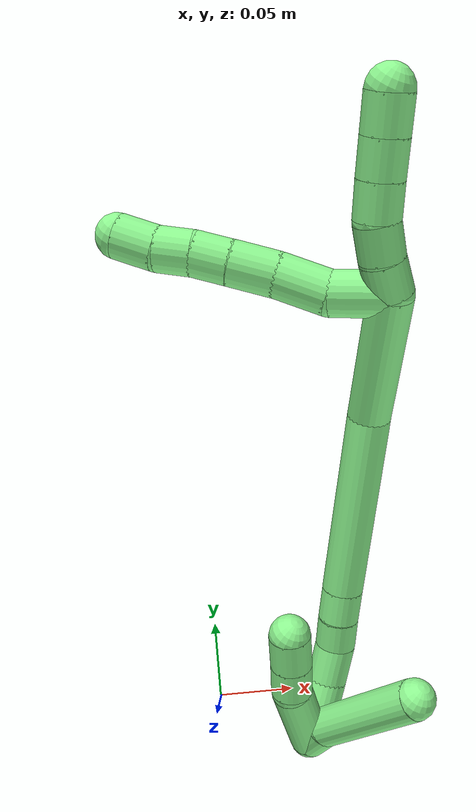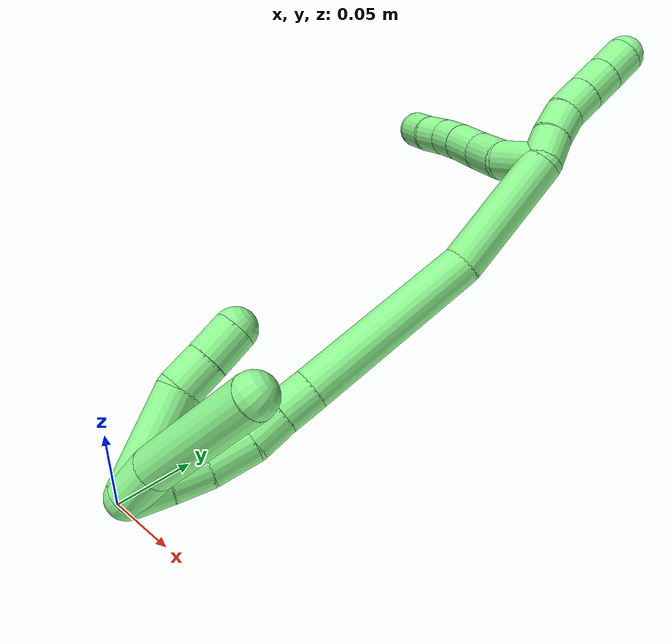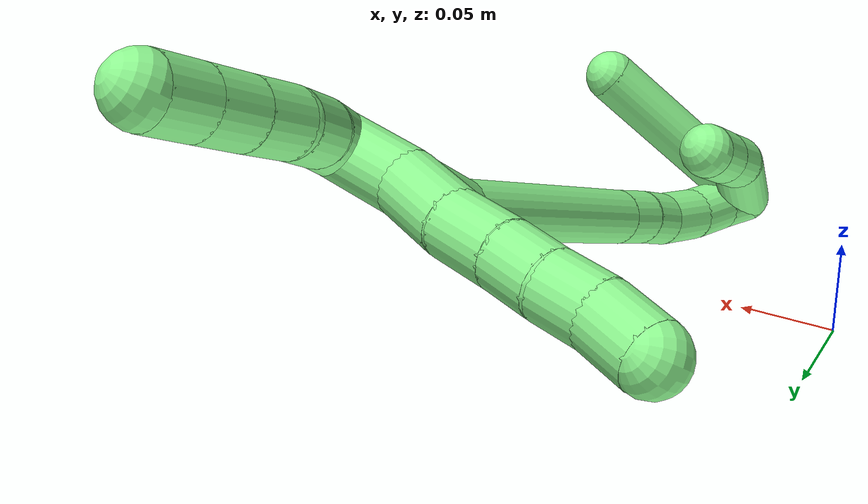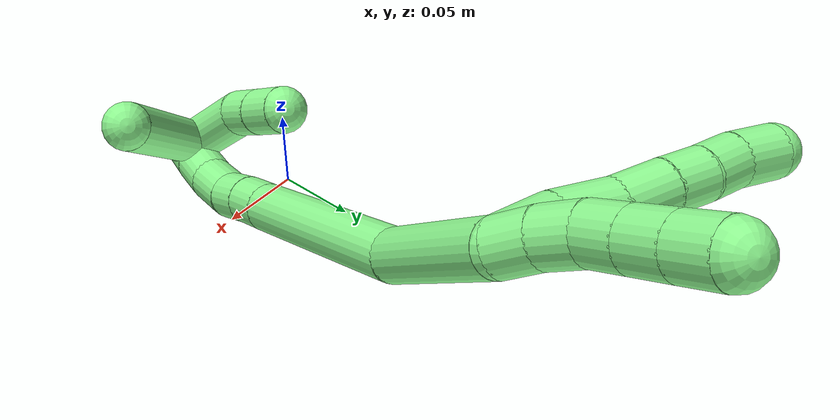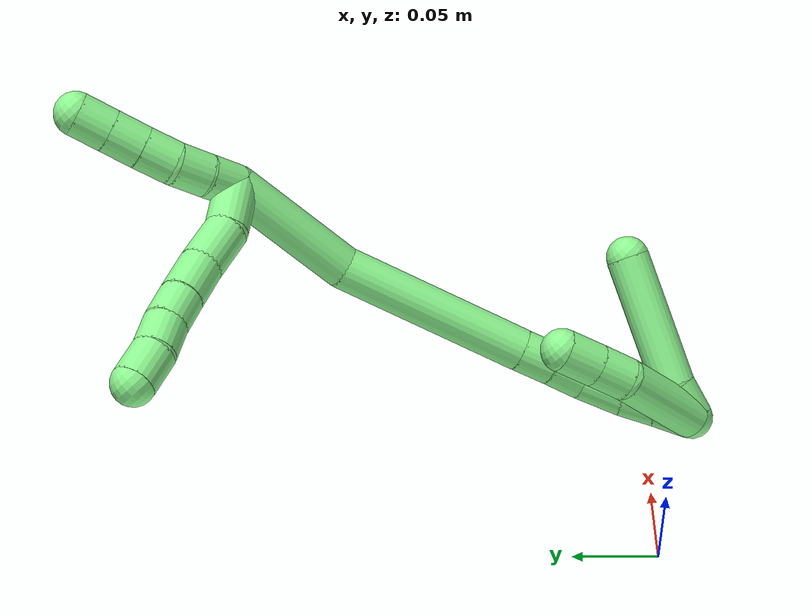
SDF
<sdf version="1.7">
 <world name="default">
  <model name="13">
   <static>0</static>
   <link name="13">
    <collision name="collision-cylinder-e_1_2_8">
     <pose>-0.012824 0.006797 -0.006803 -2.35669 -0.927377 1.7587</pose>
     <geometry><cylinder><radius>0.0125</radius><length>0.032059</length></cylinder></geometry>
     <surface>
      <friction><ode><mu>1.16</mu><mu2>1.16</mu2><slip1>0</slip1><slip2>0</slip2></ode></friction>
      <contact><ode><kp>1e+06</kp><kd>1</kd><max_vel>0</max_vel><min_depth>0.001</min_depth></ode></contact>
     </surface>
    </collision>
    <visual name="visual-cylinder-e_1_2_8">
     <pose>-0.012824 0.006797 -0.006803 -2.35669 -0.927377 1.7587</pose>
     <geometry><cylinder><radius>0.0125</radius><length>0.032059</length></cylinder></geometry>
     <material><ambient>0.564706 0.984314 0.572549 1</ambient></material>
    </visual>
    <collision name="collision-cylinder-e_2_8_9">
     <pose>-0.037551 0.021812 -0.015612 -1.81015 -0.952882 1.16282</pose>
     <geometry><cylinder><radius>0.0125</radius><length>0.029204</length></cylinder></geometry>
     <surface>
      <friction><ode><mu>1.16</mu><mu2>1.16</mu2><slip1>0</slip1><slip2>0</slip2></ode></friction>
      <contact><ode><kp>1e+06</kp><kd>1</kd><max_vel>0</max_vel><min_depth>0.001</min_depth></ode></contact>
     </surface>
    </collision>
    <visual name="visual-cylinder-e_2_8_9">
     <pose>-0.037551 0.021812 -0.015612 -1.81015 -0.952882 1.16282</pose>
     <geometry><cylinder><radius>0.0125</radius><length>0.029204</length></cylinder></geometry>
     <material><ambient>0.564706 0.984314 0.572549 1</ambient></material>
    </visual>
    <collision name="collision-cylinder-e_3_9_10">
     <pose>-0.06066 0.035935 -0.019823 -1.92825 -1.05844 1.40057</pose>
     <geometry><cylinder><radius>0.0125</radius><length>0.025716</length></cylinder></geometry>
     <surface>
      <friction><ode><mu>1.16</mu><mu2>1.16</mu2><slip1>0</slip1><slip2>0</slip2></ode></friction>
      <contact><ode><kp>1e+06</kp><kd>1</kd><max_vel>0</max_vel><min_depth>0.001</min_depth></ode></contact>
     </surface>
    </collision>
    <visual name="visual-cylinder-e_3_9_10">
     <pose>-0.06066 0.035935 -0.019823 -1.92825 -1.05844 1.40057</pose>
     <geometry><cylinder><radius>0.0125</radius><length>0.025716</length></cylinder></geometry>
     <material><ambient>0.564706 0.984314 0.572549 1</ambient></material>
    </visual>
    <collision name="collision-cylinder-e_4_10_11">
     <pose>-0.080459 0.046845 -0.024042 -1.95325 -1.01021 1.37177</pose>
     <geometry><cylinder><radius>0.0125</radius><length>0.020292</length></cylinder></geometry>
     <surface>
      <friction><ode><mu>1.16</mu><mu2>1.16</mu2><slip1>0</slip1><slip2>0</slip2></ode></friction>
      <contact><ode><kp>1e+06</kp><kd>1</kd><max_vel>0</max_vel><min_depth>0.001</min_depth></ode></contact>
     </surface>
    </collision>
    <visual name="visual-cylinder-e_4_10_11">
     <pose>-0.080459 0.046845 -0.024042 -1.95325 -1.01021 1.37177</pose>
     <geometry><cylinder><radius>0.0125</radius><length>0.020292</length></cylinder></geometry>
     <material><ambient>0.564706 0.984314 0.572549 1</ambient></material>
    </visual>
    <collision name="collision-cylinder-e_5_11_12">
     <pose>-0.09752 0.056296 -0.029125 -2.17507 -1.00285 1.6144</pose>
     <geometry><cylinder><radius>0.0125</radius><length>0.02009</length></cylinder></geometry>
     <surface>
      <friction><ode><mu>1.16</mu><mu2>1.16</mu2><slip1>0</slip1><slip2>0</slip2></ode></friction>
      <contact><ode><kp>1e+06</kp><kd>1</kd><max_vel>0</max_vel><min_depth>0.001</min_depth></ode></contact>
     </surface>
    </collision>
    <visual name="visual-cylinder-e_5_11_12">
     <pose>-0.09752 0.056296 -0.029125 -2.17507 -1.00285 1.6144</pose>
     <geometry><cylinder><radius>0.0125</radius><length>0.02009</length></cylinder></geometry>
     <material><ambient>0.564706 0.984314 0.572549 1</ambient></material>
    </visual>
    <collision name="collision-cylinder-e_6_12_6">
     <pose>-0.115138 0.067134 -0.034084 -1.85809 -0.941224 1.19543</pose>
     <geometry><cylinder><radius>0.0125</radius><length>0.022639</length></cylinder></geometry>
     <surface>
      <friction><ode><mu>1.16</mu><mu2>1.16</mu2><slip1>0</slip1><slip2>0</slip2></ode></friction>
      <contact><ode><kp>1e+06</kp><kd>1</kd><max_vel>0</max_vel><min_depth>0.001</min_depth></ode></contact>
     </surface>
    </collision>
    <visual name="visual-cylinder-e_6_12_6">
     <pose>-0.115138 0.067134 -0.034084 -1.85809 -0.941224 1.19543</pose>
     <geometry><cylinder><radius>0.0125</radius><length>0.022639</length></cylinder></geometry>
     <material><ambient>0.564706 0.984314 0.572549 1</ambient></material>
    </visual>
    <collision name="collision-cylinder-e_1_2_13">
     <pose>-0.005654 0.002293 0.007923 -0.281667 -0.600932 0.087799</pose>
     <geometry><cylinder><radius>0.0125</radius><length>0.02</length></cylinder></geometry>
     <surface>
      <friction><ode><mu>1.16</mu><mu2>1.16</mu2><slip1>0</slip1><slip2>0</slip2></ode></friction>
      <contact><ode><kp>1e+06</kp><kd>1</kd><max_vel>0</max_vel><min_depth>0.001</min_depth></ode></contact>
     </surface>
    </collision>
    <visual name="visual-cylinder-e_1_2_13">
     <pose>-0.005654 0.002293 0.007923 -0.281667 -0.600932 0.087799</pose>
     <geometry><cylinder><radius>0.0125</radius><length>0.02</length></cylinder></geometry>
     <material><ambient>0.564706 0.984314 0.572549 1</ambient></material>
    </visual>
    <collision name="collision-cylinder-e_2_13_14">
     <pose>-0.015921 0.007435 0.024248 -0.327044 -0.479487 0.080621</pose>
     <geometry><cylinder><radius>0.0125</radius><length>0.02</length></cylinder></geometry>
     <surface>
      <friction><ode><mu>1.16</mu><mu2>1.16</mu2><slip1>0</slip1><slip2>0</slip2></ode></friction>
      <contact><ode><kp>1e+06</kp><kd>1</kd><max_vel>0</max_vel><min_depth>0.001</min_depth></ode></contact>
     </surface>
    </collision>
    <visual name="visual-cylinder-e_2_13_14">
     <pose>-0.015921 0.007435 0.024248 -0.327044 -0.479487 0.080621</pose>
     <geometry><cylinder><radius>0.0125</radius><length>0.02</length></cylinder></geometry>
     <material><ambient>0.564706 0.984314 0.572549 1</ambient></material>
    </visual>
    <collision name="collision-cylinder-e_3_14_15">
     <pose>-0.022832 0.013232 0.041926 -0.307519 -0.23184 0.036089</pose>
     <geometry><cylinder><radius>0.0125</radius><length>0.02</length></cylinder></geometry>
     <surface>
      <friction><ode><mu>1.16</mu><mu2>1.16</mu2><slip1>0</slip1><slip2>0</slip2></ode></friction>
      <contact><ode><kp>1e+06</kp><kd>1</kd><max_vel>0</max_vel><min_depth>0.001</min_depth></ode></contact>
     </surface>
    </collision>
    <visual name="visual-cylinder-e_3_14_15">
     <pose>-0.022832 0.013232 0.041926 -0.307519 -0.23184 0.036089</pose>
     <geometry><cylinder><radius>0.0125</radius><length>0.02</length></cylinder></geometry>
     <material><ambient>0.564706 0.984314 0.572549 1</ambient></material>
    </visual>
    <collision name="collision-cylinder-e_4_15_16">
     <pose>-0.027301 0.018972 0.060555 -0.29034 -0.21882 0.032117</pose>
     <geometry><cylinder><radius>0.0125</radius><length>0.02</length></cylinder></geometry>
     <surface>
      <friction><ode><mu>1.16</mu><mu2>1.16</mu2><slip1>0</slip1><slip2>0</slip2></ode></friction>
      <contact><ode><kp>1e+06</kp><kd>1</kd><max_vel>0</max_vel><min_depth>0.001</min_depth></ode></contact>
     </surface>
    </collision>
    <visual name="visual-cylinder-e_4_15_16">
     <pose>-0.027301 0.018972 0.060555 -0.29034 -0.21882 0.032117</pose>
     <geometry><cylinder><radius>0.0125</radius><length>0.02</length></cylinder></geometry>
     <material><ambient>0.564706 0.984314 0.572549 1</ambient></material>
    </visual>
    <collision name="collision-cylinder-e_5_16_5">
     <pose>-0.031669 0.024537 0.079262 -0.287995 -0.221528 0.032251</pose>
     <geometry><cylinder><radius>0.0125</radius><length>0.02</length></cylinder></geometry>
     <surface>
      <friction><ode><mu>1.16</mu><mu2>1.16</mu2><slip1>0</slip1><slip2>0</slip2></ode></friction>
      <contact><ode><kp>1e+06</kp><kd>1</kd><max_vel>0</max_vel><min_depth>0.001</min_depth></ode></contact>
     </surface>
    </collision>
    <visual name="visual-cylinder-e_5_16_5">
     <pose>-0.031669 0.024537 0.079262 -0.287995 -0.221528 0.032251</pose>
     <geometry><cylinder><radius>0.0125</radius><length>0.02</length></cylinder></geometry>
     <material><ambient>0.564706 0.984314 0.572549 1</ambient></material>
    </visual>
    <collision name="collision-cylinder-e_1_2_17">
     <pose>0.01002 -0.003424 -0.037813 3.05129 0.258016 2.47133</pose>
     <geometry><cylinder><radius>0.0125</radius><length>0.078536</length></cylinder></geometry>
     <surface>
      <friction><ode><mu>1.16</mu><mu2>1.16</mu2><slip1>0</slip1><slip2>0</slip2></ode></friction>
      <contact><ode><kp>1e+06</kp><kd>1</kd><max_vel>0</max_vel><min_depth>0.001</min_depth></ode></contact>
     </surface>
    </collision>
    <visual name="visual-cylinder-e_1_2_17">
     <pose>0.01002 -0.003424 -0.037813 3.05129 0.258016 2.47133</pose>
     <geometry><cylinder><radius>0.0125</radius><length>0.078536</length></cylinder></geometry>
     <material><ambient>0.564706 0.984314 0.572549 1</ambient></material>
    </visual>
    <collision name="collision-cylinder-e_2_17_18">
     <pose>0.02815 -0.026391 -0.128553 2.78786 0.142784 0.761197</pose>
     <geometry><cylinder><radius>0.0125</radius><length>0.113998</length></cylinder></geometry>
     <surface>
      <friction><ode><mu>1.16</mu><mu2>1.16</mu2><slip1>0</slip1><slip2>0</slip2></ode></friction>
      <contact><ode><kp>1e+06</kp><kd>1</kd><max_vel>0</max_vel><min_depth>0.001</min_depth></ode></contact>
     </surface>
    </collision>
    <visual name="visual-cylinder-e_2_17_18">
     <pose>0.02815 -0.026391 -0.128553 2.78786 0.142784 0.761197</pose>
     <geometry><cylinder><radius>0.0125</radius><length>0.113998</length></cylinder></geometry>
     <material><ambient>0.564706 0.984314 0.572549 1</ambient></material>
    </visual>
    <collision name="collision-cylinder-e_3_18_19">
     <pose>0.037705 -0.049702 -0.191084 2.76787 0.139052 0.705808</pose>
     <geometry><cylinder><radius>0.0125</radius><length>0.020837</length></cylinder></geometry>
     <surface>
      <friction><ode><mu>1.16</mu><mu2>1.16</mu2><slip1>0</slip1><slip2>0</slip2></ode></friction>
      <contact><ode><kp>1e+06</kp><kd>1</kd><max_vel>0</max_vel><min_depth>0.001</min_depth></ode></contact>
     </surface>
    </collision>
    <visual name="visual-cylinder-e_3_18_19">
     <pose>0.037705 -0.049702 -0.191084 2.76787 0.139052 0.705808</pose>
     <geometry><cylinder><radius>0.0125</radius><length>0.020837</length></cylinder></geometry>
     <material><ambient>0.564706 0.984314 0.572549 1</ambient></material>
    </visual>
    <collision name="collision-cylinder-e_4_19_20">
     <pose>0.041091 -0.05675 -0.210147 2.80766 0.191577 1.0363</pose>
     <geometry><cylinder><radius>0.0125</radius><length>0.020395</length></cylinder></geometry>
     <surface>
      <friction><ode><mu>1.16</mu><mu2>1.16</mu2><slip1>0</slip1><slip2>0</slip2></ode></friction>
      <contact><ode><kp>1e+06</kp><kd>1</kd><max_vel>0</max_vel><min_depth>0.001</min_depth></ode></contact>
     </surface>
    </collision>
    <visual name="visual-cylinder-e_4_19_20">
     <pose>0.041091 -0.05675 -0.210147 2.80766 0.191577 1.0363</pose>
     <geometry><cylinder><radius>0.0125</radius><length>0.020395</length></cylinder></geometry>
     <material><ambient>0.564706 0.984314 0.572549 1</ambient></material>
    </visual>
    <collision name="collision-cylinder-e_5_20_21">
     <pose>0.04296 -0.065663 -0.231094 2.68581 -0.005638 -0.02431</pose>
     <geometry><cylinder><radius>0.0125</radius><length>0.02559</length></cylinder></geometry>
     <surface>
      <friction><ode><mu>1.16</mu><mu2>1.16</mu2><slip1>0</slip1><slip2>0</slip2></ode></friction>
      <contact><ode><kp>1e+06</kp><kd>1</kd><max_vel>0</max_vel><min_depth>0.001</min_depth></ode></contact>
     </surface>
    </collision>
    <visual name="visual-cylinder-e_5_20_21">
     <pose>0.04296 -0.065663 -0.231094 2.68581 -0.005638 -0.02431</pose>
     <geometry><cylinder><radius>0.0125</radius><length>0.02559</length></cylinder></geometry>
     <material><ambient>0.564706 0.984314 0.572549 1</ambient></material>
    </visual>
    <collision name="collision-cylinder-e_6_21_22">
     <pose>0.041758 -0.076906 -0.251119 2.56011 -0.110229 -0.364663</pose>
     <geometry><cylinder><radius>0.0125</radius><length>0.020556</length></cylinder></geometry>
     <surface>
      <friction><ode><mu>1.16</mu><mu2>1.16</mu2><slip1>0</slip1><slip2>0</slip2></ode></friction>
      <contact><ode><kp>1e+06</kp><kd>1</kd><max_vel>0</max_vel><min_depth>0.001</min_depth></ode></contact>
     </surface>
    </collision>
    <visual name="visual-cylinder-e_6_21_22">
     <pose>0.041758 -0.076906 -0.251119 2.56011 -0.110229 -0.364663</pose>
     <geometry><cylinder><radius>0.0125</radius><length>0.020556</length></cylinder></geometry>
     <material><ambient>0.564706 0.984314 0.572549 1</ambient></material>
    </visual>
    <collision name="collision-cylinder-e_7_22_1">
     <pose>0.039117 -0.087788 -0.268071 2.582 -0.150918 -0.514574</pose>
     <geometry><cylinder><radius>0.0125</radius><length>0.020089</length></cylinder></geometry>
     <surface>
      <friction><ode><mu>1.16</mu><mu2>1.16</mu2><slip1>0</slip1><slip2>0</slip2></ode></friction>
      <contact><ode><kp>1e+06</kp><kd>1</kd><max_vel>0</max_vel><min_depth>0.001</min_depth></ode></contact>
     </surface>
    </collision>
    <visual name="visual-cylinder-e_7_22_1">
     <pose>0.039117 -0.087788 -0.268071 2.582 -0.150918 -0.514574</pose>
     <geometry><cylinder><radius>0.0125</radius><length>0.020089</length></cylinder></geometry>
     <material><ambient>0.564706 0.984314 0.572549 1</ambient></material>
    </visual>
    <collision name="collision-cylinder-e_1_1_23">
     <pose>0.022307 -0.090458 -0.252496 -0.10803 -0.565048 0.031388</pose>
     <geometry><cylinder><radius>0.0125</radius><length>0.057146</length></cylinder></geometry>
     <surface>
      <friction><ode><mu>1.16</mu><mu2>1.16</mu2><slip1>0</slip1><slip2>0</slip2></ode></friction>
      <contact><ode><kp>1e+06</kp><kd>1</kd><max_vel>0</max_vel><min_depth>0.001</min_depth></ode></contact>
     </surface>
    </collision>
    <visual name="visual-cylinder-e_1_1_23">
     <pose>0.022307 -0.090458 -0.252496 -0.10803 -0.565048 0.031388</pose>
     <geometry><cylinder><radius>0.0125</radius><length>0.057146</length></cylinder></geometry>
     <material><ambient>0.564706 0.984314 0.572549 1</ambient></material>
    </visual>
    <collision name="collision-cylinder-e_2_23_24">
     <pose>0.003992 -0.084845 -0.219076 -0.309153 -0.295739 0.046412</pose>
     <geometry><cylinder><radius>0.0125</radius><length>0.020695</length></cylinder></geometry>
     <surface>
      <friction><ode><mu>1.16</mu><mu2>1.16</mu2><slip1>0</slip1><slip2>0</slip2></ode></friction>
      <contact><ode><kp>1e+06</kp><kd>1</kd><max_vel>0</max_vel><min_depth>0.001</min_depth></ode></contact>
     </surface>
    </collision>
    <visual name="visual-cylinder-e_2_23_24">
     <pose>0.003992 -0.084845 -0.219076 -0.309153 -0.295739 0.046412</pose>
     <geometry><cylinder><radius>0.0125</radius><length>0.020695</length></cylinder></geometry>
     <material><ambient>0.564706 0.984314 0.572549 1</ambient></material>
    </visual>
    <collision name="collision-cylinder-e_3_24_4">
     <pose>-0.002552 -0.078604 -0.199653 -0.312501 -0.324066 0.051492</pose>
     <geometry><cylinder><radius>0.0125</radius><length>0.022159</length></cylinder></geometry>
     <surface>
      <friction><ode><mu>1.16</mu><mu2>1.16</mu2><slip1>0</slip1><slip2>0</slip2></ode></friction>
      <contact><ode><kp>1e+06</kp><kd>1</kd><max_vel>0</max_vel><min_depth>0.001</min_depth></ode></contact>
     </surface>
    </collision>
    <visual name="visual-cylinder-e_3_24_4">
     <pose>-0.002552 -0.078604 -0.199653 -0.312501 -0.324066 0.051492</pose>
     <geometry><cylinder><radius>0.0125</radius><length>0.022159</length></cylinder></geometry>
     <material><ambient>0.564706 0.984314 0.572549 1</ambient></material>
    </visual>
    <collision name="collision-cylinder-e_1_1_25">
     <pose>0.03778 -0.095625 -0.265821 0.236014 0.01578 0.001871</pose>
     <geometry><cylinder><radius>0.0125</radius><length>0.021943</length></cylinder></geometry>
     <surface>
      <friction><ode><mu>1.16</mu><mu2>1.16</mu2><slip1>0</slip1><slip2>0</slip2></ode></friction>
      <contact><ode><kp>1e+06</kp><kd>1</kd><max_vel>0</max_vel><min_depth>0.001</min_depth></ode></contact>
     </surface>
    </collision>
    <visual name="visual-cylinder-e_1_1_25">
     <pose>0.03778 -0.095625 -0.265821 0.236014 0.01578 0.001871</pose>
     <geometry><cylinder><radius>0.0125</radius><length>0.021943</length></cylinder></geometry>
     <material><ambient>0.564706 0.984314 0.572549 1</ambient></material>
    </visual>
    <collision name="collision-cylinder-e_2_25_3">
     <pose>0.047401 -0.111556 -0.219725 0.360737 0.244505 0.044802</pose>
     <geometry><cylinder><radius>0.0125</radius><length>0.078057</length></cylinder></geometry>
     <surface>
      <friction><ode><mu>1.16</mu><mu2>1.16</mu2><slip1>0</slip1><slip2>0</slip2></ode></friction>
      <contact><ode><kp>1e+06</kp><kd>1</kd><max_vel>0</max_vel><min_depth>0.001</min_depth></ode></contact>
     </surface>
    </collision>
    <visual name="visual-cylinder-e_2_25_3">
     <pose>0.047401 -0.111556 -0.219725 0.360737 0.244505 0.044802</pose>
     <geometry><cylinder><radius>0.0125</radius><length>0.078057</length></cylinder></geometry>
     <material><ambient>0.564706 0.984314 0.572549 1</ambient></material>
    </visual>
    <collision name="collision-sphere-3">
     <pose>0.056849 -0.124922 -0.184294 0 -0 0</pose>
     <geometry><sphere><radius>0.0125</radius></sphere></geometry>
     <surface>
      <friction><ode><mu>1.16</mu><mu2>1.16</mu2><slip1>0</slip1><slip2>0</slip2></ode></friction>
      <contact><ode><kp>1e+06</kp><kd>1</kd><max_vel>0</max_vel><min_depth>0.001</min_depth></ode></contact>
     </surface>
    </collision>
    <visual name="visual-sphere-3">
     <pose>0.056849 -0.124922 -0.184294 0 -0 0</pose>
     <geometry><sphere><radius>0.0125</radius></sphere></geometry>
     <material><ambient>0.564706 0.984314 0.572549 1</ambient></material>
    </visual>
    <collision name="collision-sphere-25">
     <pose>0.037953 -0.09819 -0.255155 0 -0 0</pose>
     <geometry><sphere><radius>0.0125</radius></sphere></geometry>
     <surface>
      <friction><ode><mu>1.16</mu><mu2>1.16</mu2><slip1>0</slip1><slip2>0</slip2></ode></friction>
      <contact><ode><kp>1e+06</kp><kd>1</kd><max_vel>0</max_vel><min_depth>0.001</min_depth></ode></contact>
     </surface>
    </collision>
    <visual name="visual-sphere-25">
     <pose>0.037953 -0.09819 -0.255155 0 -0 0</pose>
     <geometry><sphere><radius>0.0125</radius></sphere></geometry>
     <material><ambient>0.564706 0.984314 0.572549 1</ambient></material>
    </visual>
    <collision name="collision-sphere-4">
     <pose>-0.00608 -0.075375 -0.189659 0 -0 0</pose>
     <geometry><sphere><radius>0.0125</radius></sphere></geometry>
     <surface>
      <friction><ode><mu>1.16</mu><mu2>1.16</mu2><slip1>0</slip1><slip2>0</slip2></ode></friction>
      <contact><ode><kp>1e+06</kp><kd>1</kd><max_vel>0</max_vel><min_depth>0.001</min_depth></ode></contact>
     </surface>
    </collision>
    <visual name="visual-sphere-4">
     <pose>-0.00608 -0.075375 -0.189659 0 -0 0</pose>
     <geometry><sphere><radius>0.0125</radius></sphere></geometry>
     <material><ambient>0.564706 0.984314 0.572549 1</ambient></material>
    </visual>
    <collision name="collision-sphere-24">
     <pose>0.000976 -0.081833 -0.209647 0 -0 0</pose>
     <geometry><sphere><radius>0.0125</radius></sphere></geometry>
     <surface>
      <friction><ode><mu>1.16</mu><mu2>1.16</mu2><slip1>0</slip1><slip2>0</slip2></ode></friction>
      <contact><ode><kp>1e+06</kp><kd>1</kd><max_vel>0</max_vel><min_depth>0.001</min_depth></ode></contact>
     </surface>
    </collision>
    <visual name="visual-sphere-24">
     <pose>0.000976 -0.081833 -0.209647 0 -0 0</pose>
     <geometry><sphere><radius>0.0125</radius></sphere></geometry>
     <material><ambient>0.564706 0.984314 0.572549 1</ambient></material>
    </visual>
    <collision name="collision-sphere-23">
     <pose>0.007008 -0.087856 -0.228505 0 -0 0</pose>
     <geometry><sphere><radius>0.0125</radius></sphere></geometry>
     <surface>
      <friction><ode><mu>1.16</mu><mu2>1.16</mu2><slip1>0</slip1><slip2>0</slip2></ode></friction>
      <contact><ode><kp>1e+06</kp><kd>1</kd><max_vel>0</max_vel><min_depth>0.001</min_depth></ode></contact>
     </surface>
    </collision>
    <visual name="visual-sphere-23">
     <pose>0.007008 -0.087856 -0.228505 0 -0 0</pose>
     <geometry><sphere><radius>0.0125</radius></sphere></geometry>
     <material><ambient>0.564706 0.984314 0.572549 1</ambient></material>
    </visual>
    <collision name="collision-sphere-1">
     <pose>0.037607 -0.09306 -0.276487 0 -0 0</pose>
     <geometry><sphere><radius>0.0125</radius></sphere></geometry>
     <surface>
      <friction><ode><mu>1.16</mu><mu2>1.16</mu2><slip1>0</slip1><slip2>0</slip2></ode></friction>
      <contact><ode><kp>1e+06</kp><kd>1</kd><max_vel>0</max_vel><min_depth>0.001</min_depth></ode></contact>
     </surface>
    </collision>
    <visual name="visual-sphere-1">
     <pose>0.037607 -0.09306 -0.276487 0 -0 0</pose>
     <geometry><sphere><radius>0.0125</radius></sphere></geometry>
     <material><ambient>0.564706 0.984314 0.572549 1</ambient></material>
    </visual>
    <collision name="collision-sphere-22">
     <pose>0.040627 -0.082517 -0.259656 0 -0 0</pose>
     <geometry><sphere><radius>0.0125</radius></sphere></geometry>
     <surface>
      <friction><ode><mu>1.16</mu><mu2>1.16</mu2><slip1>0</slip1><slip2>0</slip2></ode></friction>
      <contact><ode><kp>1e+06</kp><kd>1</kd><max_vel>0</max_vel><min_depth>0.001</min_depth></ode></contact>
     </surface>
    </collision>
    <visual name="visual-sphere-22">
     <pose>0.040627 -0.082517 -0.259656 0 -0 0</pose>
     <geometry><sphere><radius>0.0125</radius></sphere></geometry>
     <material><ambient>0.564706 0.984314 0.572549 1</ambient></material>
    </visual>
    <collision name="collision-sphere-21">
     <pose>0.042888 -0.071295 -0.242583 0 -0 0</pose>
     <geometry><sphere><radius>0.0125</radius></sphere></geometry>
     <surface>
      <friction><ode><mu>1.16</mu><mu2>1.16</mu2><slip1>0</slip1><slip2>0</slip2></ode></friction>
      <contact><ode><kp>1e+06</kp><kd>1</kd><max_vel>0</max_vel><min_depth>0.001</min_depth></ode></contact>
     </surface>
    </collision>
    <visual name="visual-sphere-21">
     <pose>0.042888 -0.071295 -0.242583 0 -0 0</pose>
     <geometry><sphere><radius>0.0125</radius></sphere></geometry>
     <material><ambient>0.564706 0.984314 0.572549 1</ambient></material>
    </visual>
    <collision name="collision-sphere-12">
     <pose>-0.105989 0.060742 -0.032195 0 -0 0</pose>
     <geometry><sphere><radius>0.0125</radius></sphere></geometry>
     <surface>
      <friction><ode><mu>1.16</mu><mu2>1.16</mu2><slip1>0</slip1><slip2>0</slip2></ode></friction>
      <contact><ode><kp>1e+06</kp><kd>1</kd><max_vel>0</max_vel><min_depth>0.001</min_depth></ode></contact>
     </surface>
    </collision>
    <visual name="visual-sphere-12">
     <pose>-0.105989 0.060742 -0.032195 0 -0 0</pose>
     <geometry><sphere><radius>0.0125</radius></sphere></geometry>
     <material><ambient>0.564706 0.984314 0.572549 1</ambient></material>
    </visual>
    <collision name="collision-sphere-11">
     <pose>-0.089052 0.051849 -0.026055 0 -0 0</pose>
     <geometry><sphere><radius>0.0125</radius></sphere></geometry>
     <surface>
      <friction><ode><mu>1.16</mu><mu2>1.16</mu2><slip1>0</slip1><slip2>0</slip2></ode></friction>
      <contact><ode><kp>1e+06</kp><kd>1</kd><max_vel>0</max_vel><min_depth>0.001</min_depth></ode></contact>
     </surface>
    </collision>
    <visual name="visual-sphere-11">
     <pose>-0.089052 0.051849 -0.026055 0 -0 0</pose>
     <geometry><sphere><radius>0.0125</radius></sphere></geometry>
     <material><ambient>0.564706 0.984314 0.572549 1</ambient></material>
    </visual>
    <collision name="collision-sphere-10">
     <pose>-0.071866 0.04184 -0.022029 0 -0 0</pose>
     <geometry><sphere><radius>0.0125</radius></sphere></geometry>
     <surface>
      <friction><ode><mu>1.16</mu><mu2>1.16</mu2><slip1>0</slip1><slip2>0</slip2></ode></friction>
      <contact><ode><kp>1e+06</kp><kd>1</kd><max_vel>0</max_vel><min_depth>0.001</min_depth></ode></contact>
     </surface>
    </collision>
    <visual name="visual-sphere-10">
     <pose>-0.071866 0.04184 -0.022029 0 -0 0</pose>
     <geometry><sphere><radius>0.0125</radius></sphere></geometry>
     <material><ambient>0.564706 0.984314 0.572549 1</ambient></material>
    </visual>
    <collision name="collision-sphere-9">
     <pose>-0.049453 0.03003 -0.017618 0 -0 0</pose>
     <geometry><sphere><radius>0.0125</radius></sphere></geometry>
     <surface>
      <friction><ode><mu>1.16</mu><mu2>1.16</mu2><slip1>0</slip1><slip2>0</slip2></ode></friction>
      <contact><ode><kp>1e+06</kp><kd>1</kd><max_vel>0</max_vel><min_depth>0.001</min_depth></ode></contact>
     </surface>
    </collision>
    <visual name="visual-sphere-9">
     <pose>-0.049453 0.03003 -0.017618 0 -0 0</pose>
     <geometry><sphere><radius>0.0125</radius></sphere></geometry>
     <material><ambient>0.564706 0.984314 0.572549 1</ambient></material>
    </visual>
    <collision name="collision-sphere-2">
     <geometry><sphere><radius>0.0125</radius></sphere></geometry>
     <surface>
      <friction><ode><mu>1.16</mu><mu2>1.16</mu2><slip1>0</slip1><slip2>0</slip2></ode></friction>
      <contact><ode><kp>1e+06</kp><kd>1</kd><max_vel>0</max_vel><min_depth>0.001</min_depth></ode></contact>
     </surface>
    </collision>
    <visual name="visual-sphere-2">
     <geometry><sphere><radius>0.0125</radius></sphere></geometry>
     <material><ambient>0.564706 0.984314 0.572549 1</ambient></material>
    </visual>
    <collision name="collision-sphere-19">
     <pose>0.039149 -0.053469 -0.200689 0 -0 0</pose>
     <geometry><sphere><radius>0.0125</radius></sphere></geometry>
     <surface>
      <friction><ode><mu>1.16</mu><mu2>1.16</mu2><slip1>0</slip1><slip2>0</slip2></ode></friction>
      <contact><ode><kp>1e+06</kp><kd>1</kd><max_vel>0</max_vel><min_depth>0.001</min_depth></ode></contact>
     </surface>
    </collision>
    <visual name="visual-sphere-19">
     <pose>0.039149 -0.053469 -0.200689 0 -0 0</pose>
     <geometry><sphere><radius>0.0125</radius></sphere></geometry>
     <material><ambient>0.564706 0.984314 0.572549 1</ambient></material>
    </visual>
    <collision name="collision-sphere-8">
     <pose>-0.025649 0.013593 -0.013607 0 -0 0</pose>
     <geometry><sphere><radius>0.0125</radius></sphere></geometry>
     <surface>
      <friction><ode><mu>1.16</mu><mu2>1.16</mu2><slip1>0</slip1><slip2>0</slip2></ode></friction>
      <contact><ode><kp>1e+06</kp><kd>1</kd><max_vel>0</max_vel><min_depth>0.001</min_depth></ode></contact>
     </surface>
    </collision>
    <visual name="visual-sphere-8">
     <pose>-0.025649 0.013593 -0.013607 0 -0 0</pose>
     <geometry><sphere><radius>0.0125</radius></sphere></geometry>
     <material><ambient>0.564706 0.984314 0.572549 1</ambient></material>
    </visual>
    <collision name="collision-sphere-6">
     <pose>-0.124287 0.073526 -0.035972 0 -0 0</pose>
     <geometry><sphere><radius>0.0125</radius></sphere></geometry>
     <surface>
      <friction><ode><mu>1.16</mu><mu2>1.16</mu2><slip1>0</slip1><slip2>0</slip2></ode></friction>
      <contact><ode><kp>1e+06</kp><kd>1</kd><max_vel>0</max_vel><min_depth>0.001</min_depth></ode></contact>
     </surface>
    </collision>
    <visual name="visual-sphere-6">
     <pose>-0.124287 0.073526 -0.035972 0 -0 0</pose>
     <geometry><sphere><radius>0.0125</radius></sphere></geometry>
     <material><ambient>0.564706 0.984314 0.572549 1</ambient></material>
    </visual>
    <collision name="collision-sphere-13">
     <pose>-0.011308 0.004585 0.015846 0 -0 0</pose>
     <geometry><sphere><radius>0.0125</radius></sphere></geometry>
     <surface>
      <friction><ode><mu>1.16</mu><mu2>1.16</mu2><slip1>0</slip1><slip2>0</slip2></ode></friction>
      <contact><ode><kp>1e+06</kp><kd>1</kd><max_vel>0</max_vel><min_depth>0.001</min_depth></ode></contact>
     </surface>
    </collision>
    <visual name="visual-sphere-13">
     <pose>-0.011308 0.004585 0.015846 0 -0 0</pose>
     <geometry><sphere><radius>0.0125</radius></sphere></geometry>
     <material><ambient>0.564706 0.984314 0.572549 1</ambient></material>
    </visual>
    <collision name="collision-sphere-14">
     <pose>-0.020535 0.010286 0.03265 0 -0 0</pose>
     <geometry><sphere><radius>0.0125</radius></sphere></geometry>
     <surface>
      <friction><ode><mu>1.16</mu><mu2>1.16</mu2><slip1>0</slip1><slip2>0</slip2></ode></friction>
      <contact><ode><kp>1e+06</kp><kd>1</kd><max_vel>0</max_vel><min_depth>0.001</min_depth></ode></contact>
     </surface>
    </collision>
    <visual name="visual-sphere-14">
     <pose>-0.020535 0.010286 0.03265 0 -0 0</pose>
     <geometry><sphere><radius>0.0125</radius></sphere></geometry>
     <material><ambient>0.564706 0.984314 0.572549 1</ambient></material>
    </visual>
    <collision name="collision-sphere-15">
     <pose>-0.02513 0.016178 0.051202 0 -0 0</pose>
     <geometry><sphere><radius>0.0125</radius></sphere></geometry>
     <surface>
      <friction><ode><mu>1.16</mu><mu2>1.16</mu2><slip1>0</slip1><slip2>0</slip2></ode></friction>
      <contact><ode><kp>1e+06</kp><kd>1</kd><max_vel>0</max_vel><min_depth>0.001</min_depth></ode></contact>
     </surface>
    </collision>
    <visual name="visual-sphere-15">
     <pose>-0.02513 0.016178 0.051202 0 -0 0</pose>
     <geometry><sphere><radius>0.0125</radius></sphere></geometry>
     <material><ambient>0.564706 0.984314 0.572549 1</ambient></material>
    </visual>
    <collision name="collision-sphere-16">
     <pose>-0.029472 0.021767 0.069908 0 -0 0</pose>
     <geometry><sphere><radius>0.0125</radius></sphere></geometry>
     <surface>
      <friction><ode><mu>1.16</mu><mu2>1.16</mu2><slip1>0</slip1><slip2>0</slip2></ode></friction>
      <contact><ode><kp>1e+06</kp><kd>1</kd><max_vel>0</max_vel><min_depth>0.001</min_depth></ode></contact>
     </surface>
    </collision>
    <visual name="visual-sphere-16">
     <pose>-0.029472 0.021767 0.069908 0 -0 0</pose>
     <geometry><sphere><radius>0.0125</radius></sphere></geometry>
     <material><ambient>0.564706 0.984314 0.572549 1</ambient></material>
    </visual>
    <collision name="collision-sphere-5">
     <pose>-0.033866 0.027308 0.088616 0 -0 0</pose>
     <geometry><sphere><radius>0.0125</radius></sphere></geometry>
     <surface>
      <friction><ode><mu>1.16</mu><mu2>1.16</mu2><slip1>0</slip1><slip2>0</slip2></ode></friction>
      <contact><ode><kp>1e+06</kp><kd>1</kd><max_vel>0</max_vel><min_depth>0.001</min_depth></ode></contact>
     </surface>
    </collision>
    <visual name="visual-sphere-5">
     <pose>-0.033866 0.027308 0.088616 0 -0 0</pose>
     <geometry><sphere><radius>0.0125</radius></sphere></geometry>
     <material><ambient>0.564706 0.984314 0.572549 1</ambient></material>
    </visual>
    <collision name="collision-sphere-17">
     <pose>0.020039 -0.006848 -0.075627 0 -0 0</pose>
     <geometry><sphere><radius>0.0125</radius></sphere></geometry>
     <surface>
      <friction><ode><mu>1.16</mu><mu2>1.16</mu2><slip1>0</slip1><slip2>0</slip2></ode></friction>
      <contact><ode><kp>1e+06</kp><kd>1</kd><max_vel>0</max_vel><min_depth>0.001</min_depth></ode></contact>
     </surface>
    </collision>
    <visual name="visual-sphere-17">
     <pose>0.020039 -0.006848 -0.075627 0 -0 0</pose>
     <geometry><sphere><radius>0.0125</radius></sphere></geometry>
     <material><ambient>0.564706 0.984314 0.572549 1</ambient></material>
    </visual>
    <collision name="collision-sphere-18">
     <pose>0.036261 -0.045935 -0.181478 0 -0 0</pose>
     <geometry><sphere><radius>0.0125</radius></sphere></geometry>
     <surface>
      <friction><ode><mu>1.16</mu><mu2>1.16</mu2><slip1>0</slip1><slip2>0</slip2></ode></friction>
      <contact><ode><kp>1e+06</kp><kd>1</kd><max_vel>0</max_vel><min_depth>0.001</min_depth></ode></contact>
     </surface>
    </collision>
    <visual name="visual-sphere-18">
     <pose>0.036261 -0.045935 -0.181478 0 -0 0</pose>
     <geometry><sphere><radius>0.0125</radius></sphere></geometry>
     <material><ambient>0.564706 0.984314 0.572549 1</ambient></material>
    </visual>
    <collision name="collision-sphere-20">
     <pose>0.043033 -0.060031 -0.219605 0 -0 0</pose>
     <geometry><sphere><radius>0.0125</radius></sphere></geometry>
     <surface>
      <friction><ode><mu>1.16</mu><mu2>1.16</mu2><slip1>0</slip1><slip2>0</slip2></ode></friction>
      <contact><ode><kp>1e+06</kp><kd>1</kd><max_vel>0</max_vel><min_depth>0.001</min_depth></ode></contact>
     </surface>
    </collision>
    <visual name="visual-sphere-20">
     <pose>0.043033 -0.060031 -0.219605 0 -0 0</pose>
     <geometry><sphere><radius>0.0125</radius></sphere></geometry>
     <material><ambient>0.564706 0.984314 0.572549 1</ambient></material>
    </visual>
    <inertial>
     <pose>0.003812 -0.031011 -0.116632 0 -0 0</pose>
     <mass>0.75</mass>
     <inertia><ixx>0.000248</ixx><ixy>0</ixy><ixz>0</ixz><iyy>0.00015</iyy><iyz>0</iyz><izz>3.6e-05</izz></inertia>
    </inertial>
   </link>
   <pose>0.119151 0.240483 0.177751 -0.82811 0.438791 -0.166518</pose>
  </model>
 </world>
</sdf>
